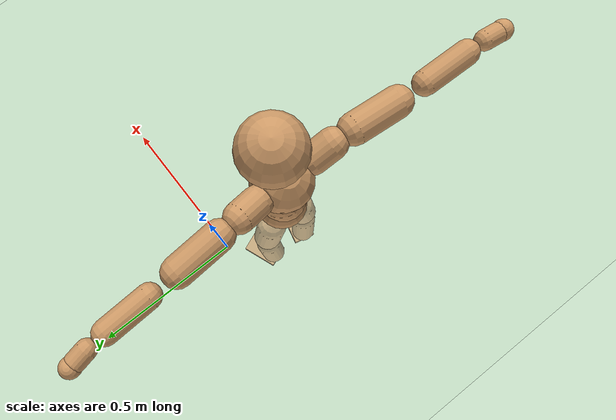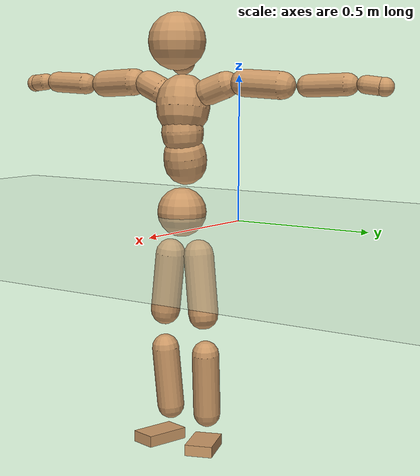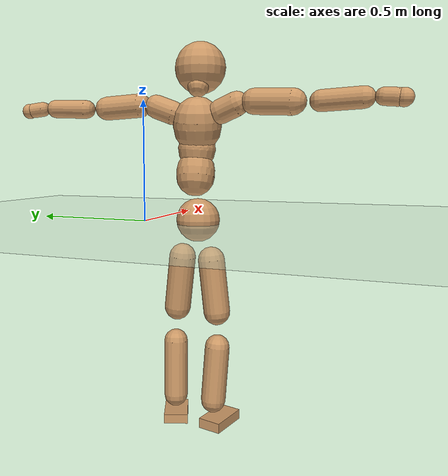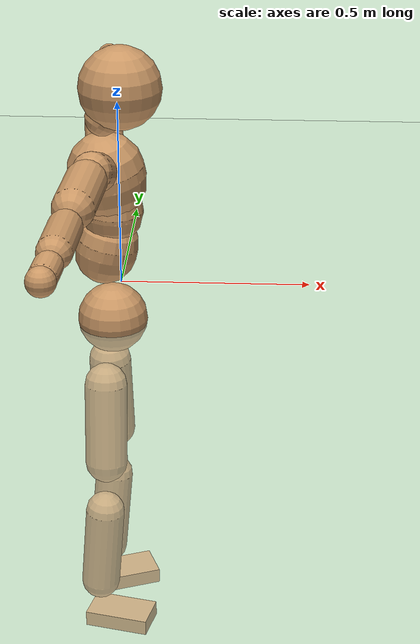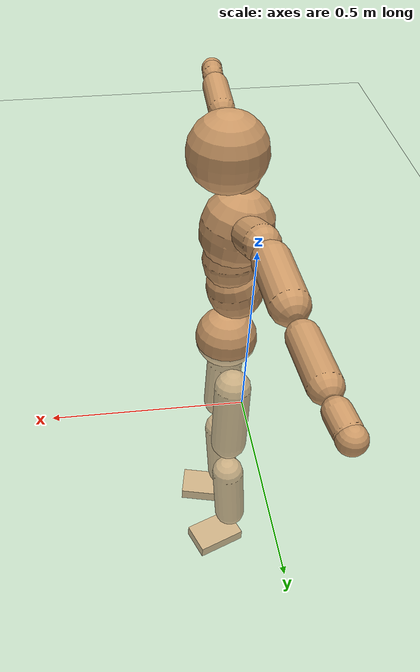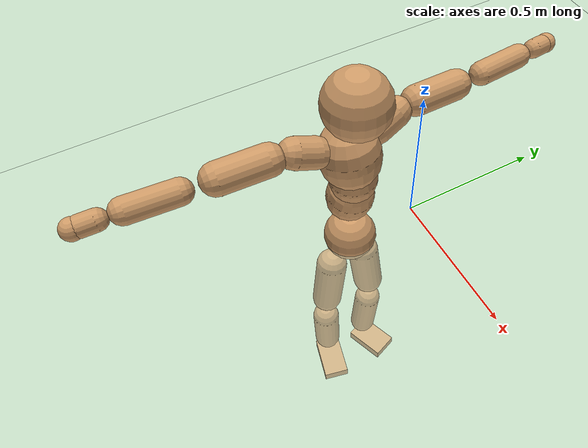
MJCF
<mujoco model="humanoid">
  <compiler coordinate="local" angle="radian"/>
  <default>
    <joint damping="0.0" armature="0.01" stiffness="0.0" limited="true"/>
    <geom conaffinity="1" condim="3" contype="7" margin="0.001" rgba="0.8 0.6 .4 1"/>
  </default>
  <asset>
    <texture type="skybox" builtin="gradient" rgb1=".4 .5 .6" rgb2="0 0 0" width="100" height="100"/>
    <texture builtin="flat" height="1278" mark="cross" markrgb="1 1 1" name="texgeom" random="0.01" rgb1="0.8 0.6 0.4" rgb2="0.8 0.6 0.4" type="cube" width="127"/>
    <texture builtin="checker" height="100" name="texplane" rgb1="0 0 0" rgb2="0.8 0.8 0.8" type="2d" width="100"/>
    <material name="MatPlane" reflectance="0.5" shininess="1" specular="1" texrepeat="60 60" texture="texplane"/>
    <material name="geom" texture="texgeom" texuniform="true"/>
  </asset>
  <worldbody>
    <light cutoff="100" diffuse="1 1 1" dir="-0 0 -1.3" directional="true" exponent="1" pos="0 0 1.3" specular=".1 .1 .1"/>
    <geom conaffinity="1" condim="3" name="floor" pos="0 0 0" rgba="0.8 0.9 0.8 1" size="100 100 .2" type="plane" material="MatPlane"/>
    <body name="Pelvis" pos="0.0011 -0.2422 0.0136">
      <freejoint name="Pelvis"/>
      <geom type="sphere" contype="1" conaffinity="1" density="500" size="0.0884" pos="0.0000 0.0000 0.0000" name="Pelvis"/>
      <body name="L_Hip" pos="-0.0189 0.0537 -0.0794">
        <joint name="L_Hip_x" type="hinge" pos="0 0 0" axis="1 0 0" stiffness="800" damping="80" armature="0.02" range="-180.0000 180.0000"/>
        <joint name="L_Hip_y" type="hinge" pos="0 0 0" axis="0 1 0" stiffness="800" damping="80" armature="0.02" range="-180.0000 180.0000"/>
        <joint name="L_Hip_z" type="hinge" pos="0 0 0" axis="0 0 1" stiffness="800" damping="80" armature="0.02" range="-180.0000 180.0000"/>
        <geom type="capsule" contype="1" conaffinity="1" density="500" fromto="0.0015 0.0081 -0.0722 0.0061 0.0325 -0.2888" size="0.0542" name="L_Hip"/>
        <body name="L_Knee" pos="0.0076 0.0407 -0.361">
          <joint name="L_Knee_x" type="hinge" pos="0 0 0" axis="1 0 0" stiffness="800" damping="80" armature="0.02" range="-180.0000 180.0000"/>
          <joint name="L_Knee_y" type="hinge" pos="0 0 0" axis="0 1 0" stiffness="800" damping="80" armature="0.02" range="-180.0000 180.0000"/>
          <joint name="L_Knee_z" type="hinge" pos="0 0 0" axis="0 0 1" stiffness="800" damping="80" armature="0.02" range="-180.0000 180.0000"/>
          <geom type="capsule" contype="1" conaffinity="1" density="500" fromto="-0.0069 -0.0024 -0.0757 -0.0274 -0.0097 -0.3030" size="0.0494" name="L_Knee"/>
          <body name="L_Ankle" pos="-0.0343 -0.0122 -0.3787">
            <joint name="L_Ankle_x" type="hinge" pos="0 0 0" axis="1 0 0" stiffness="800" damping="80" armature="0.02" range="-180.0000 180.0000"/>
            <joint name="L_Ankle_y" type="hinge" pos="0 0 0" axis="0 1 0" stiffness="800" damping="80" armature="0.02" range="-180.0000 180.0000"/>
            <joint name="L_Ankle_z" type="hinge" pos="0 0 0" axis="0 0 1" stiffness="800" damping="80" armature="0.02" range="-180.0000 180.0000"/>
            <geom type="box" contype="1" conaffinity="1" density="500" pos="0.0557 0.0214 -0.0276" size="0.078 0.0496 0.0199" quat="0.9832 0.0000 0.0000 0.1826" name="L_Ankle"/>
            <body name="L_Toe" pos="0.1114 0.0429 -0.0552">
              <joint name="L_Toe_x" type="hinge" pos="0 0 0" axis="1 0 0" stiffness="500" damping="50" armature="0.02" range="-180.0000 180.0000"/>
              <joint name="L_Toe_y" type="hinge" pos="0 0 0" axis="0 1 0" stiffness="500" damping="50" armature="0.02" range="-180.0000 180.0000"/>
              <joint name="L_Toe_z" type="hinge" pos="0 0 0" axis="0 0 1" stiffness="500" damping="50" armature="0.02" range="-180.0000 180.0000"/>
              <geom type="box" contype="1" conaffinity="1" density="500" pos="0.0000 0.0000 0.0286" size="0.001 0.0023 0.001" quat="0.9823 0.0000 0.0000 0.1873" name="L_Toe"/>
            </body>
          </body>
        </body>
      </body>
      <body name="R_Hip" pos="-0.0158 -0.0558 -0.0875">
        <joint name="R_Hip_x" type="hinge" pos="0 0 0" axis="1 0 0" stiffness="800" damping="80" armature="0.02" range="-180.0000 180.0000"/>
        <joint name="R_Hip_y" type="hinge" pos="0 0 0" axis="0 1 0" stiffness="800" damping="80" armature="0.02" range="-180.0000 180.0000"/>
        <joint name="R_Hip_z" type="hinge" pos="0 0 0" axis="0 0 1" stiffness="800" damping="80" armature="0.02" range="-180.0000 180.0000"/>
        <geom type="capsule" contype="1" conaffinity="1" density="500" fromto="-0.0005 -0.0084 -0.0713 -0.0019 -0.0336 -0.2850" size="0.054" name="R_Hip"/>
        <body name="R_Knee" pos="-0.0024 -0.0421 -0.3563">
          <joint name="R_Knee_x" type="hinge" pos="0 0 0" axis="1 0 0" stiffness="800" damping="80" armature="0.02" range="-180.0000 180.0000"/>
          <joint name="R_Knee_y" type="hinge" pos="0 0 0" axis="0 1 0" stiffness="800" damping="80" armature="0.02" range="-180.0000 180.0000"/>
          <joint name="R_Knee_z" type="hinge" pos="0 0 0" axis="0 0 1" stiffness="800" damping="80" armature="0.02" range="-180.0000 180.0000"/>
          <geom type="capsule" contype="1" conaffinity="1" density="500" fromto="-0.0062 0.0033 -0.0746 -0.0248 0.0133 -0.2984" size="0.0502" name="R_Knee"/>
          <body name="R_Ankle" pos="-0.0309 0.0166 -0.373">
            <joint name="R_Ankle_x" type="hinge" pos="0 0 0" axis="1 0 0" stiffness="800" damping="80" armature="0.02" range="-180.0000 180.0000"/>
            <joint name="R_Ankle_y" type="hinge" pos="0 0 0" axis="0 1 0" stiffness="800" damping="80" armature="0.02" range="-180.0000 180.0000"/>
            <joint name="R_Ankle_z" type="hinge" pos="0 0 0" axis="0 0 1" stiffness="800" damping="80" armature="0.02" range="-180.0000 180.0000"/>
            <geom type="box" contype="1" conaffinity="1" density="500" pos="0.0597 -0.0140 -0.0295" size="0.0837 0.0481 0.0205" quat="0.9934 0.0000 0.0000 -0.1150" name="R_Ankle"/>
            <body name="R_Toe" pos="0.1193 -0.028 -0.0591">
              <joint name="R_Toe_x" type="hinge" pos="0 0 0" axis="1 0 0" stiffness="500" damping="50" armature="0.02" range="-180.0000 180.0000"/>
              <joint name="R_Toe_y" type="hinge" pos="0 0 0" axis="0 1 0" stiffness="500" damping="50" armature="0.02" range="-180.0000 180.0000"/>
              <joint name="R_Toe_z" type="hinge" pos="0 0 0" axis="0 0 1" stiffness="500" damping="50" armature="0.02" range="-180.0000 180.0000"/>
              <geom type="box" contype="1" conaffinity="1" density="500" pos="0.0000 0.0000 0.0316" size="0.001 0.0023 0.0011" quat="0.9944 0.0000 0.0000 -0.1053" name="R_Toe"/>
            </body>
          </body>
        </body>
      </body>
      <body name="Torso" pos="-0.0275 0.0039 0.1196">
        <joint name="Torso_x" type="hinge" pos="0 0 0" axis="1 0 0" stiffness="1000" damping="100" armature="0.02" range="-180.0000 180.0000"/>
        <joint name="Torso_y" type="hinge" pos="0 0 0" axis="0 1 0" stiffness="1000" damping="100" armature="0.02" range="-180.0000 180.0000"/>
        <joint name="Torso_z" type="hinge" pos="0 0 0" axis="0 0 1" stiffness="1000" damping="100" armature="0.02" range="-180.0000 180.0000"/>
        <geom type="capsule" contype="1" conaffinity="1" density="500" fromto="0.0192 0.0030 0.0835 0.0128 0.0020 0.0556" size="0.077" name="Torso"/>
        <body name="Spine" pos="0.032 0.0049 0.1391">
          <joint name="Spine_x" type="hinge" pos="0 0 0" axis="1 0 0" stiffness="1000" damping="100" armature="0.02" range="-180.0000 180.0000"/>
          <joint name="Spine_y" type="hinge" pos="0 0 0" axis="0 1 0" stiffness="1000" damping="100" armature="0.02" range="-180.0000 180.0000"/>
          <joint name="Spine_z" type="hinge" pos="0 0 0" axis="0 0 1" stiffness="1000" damping="100" armature="0.02" range="-180.0000 180.0000"/>
          <geom type="capsule" contype="1" conaffinity="1" density="500" fromto="0.0014 -0.0016 0.0331 0.0010 -0.0011 0.0221" size="0.0755" name="Spine"/>
          <body name="Chest" pos="0.0024 -0.0027 0.0552">
            <joint name="Chest_x" type="hinge" pos="0 0 0" axis="1 0 0" stiffness="1000" damping="100" armature="0.02" range="-180.0000 180.0000"/>
            <joint name="Chest_y" type="hinge" pos="0 0 0" axis="0 1 0" stiffness="1000" damping="100" armature="0.02" range="-180.0000 180.0000"/>
            <joint name="Chest_z" type="hinge" pos="0 0 0" axis="0 0 1" stiffness="1000" damping="100" armature="0.02" range="-180.0000 180.0000"/>
            <geom type="capsule" contype="1" conaffinity="1" density="500" fromto="-0.0151 -0.0054 0.0820 -0.0100 -0.0036 0.0547" size="0.0959" name="Chest"/>
            <body name="Neck" pos="-0.0298 -0.0124 0.1986">
              <joint name="Neck_x" type="hinge" pos="0 0 0" axis="1 0 0" stiffness="500" damping="50" armature="0.02" range="-180.0000 180.0000"/>
              <joint name="Neck_y" type="hinge" pos="0 0 0" axis="0 1 0" stiffness="500" damping="50" armature="0.02" range="-180.0000 180.0000"/>
              <joint name="Neck_z" type="hinge" pos="0 0 0" axis="0 0 1" stiffness="500" damping="50" armature="0.02" range="-180.0000 180.0000"/>
              <geom type="capsule" contype="1" conaffinity="1" density="500" fromto="0.0108 0.0018 0.0185 0.0432 0.0073 0.0740" size="0.0434" name="Neck"/>
              <body name="Head" pos="0.0539 0.0091 0.0925">
                <joint name="Head_x" type="hinge" pos="0 0 0" axis="1 0 0" stiffness="500" damping="50" armature="0.02" range="-180.0000 180.0000"/>
                <joint name="Head_y" type="hinge" pos="0 0 0" axis="0 1 0" stiffness="500" damping="50" armature="0.02" range="-180.0000 180.0000"/>
                <joint name="Head_z" type="hinge" pos="0 0 0" axis="0 0 1" stiffness="500" damping="50" armature="0.02" range="-180.0000 180.0000"/>
                <geom type="sphere" contype="1" conaffinity="1" density="500" size="0.1018" pos="0.0000 0.0000 0.0000" name="Head"/>
              </body>
            </body>
            <body name="L_Thorax" pos="-0.0219 0.0687 0.1055">
              <joint name="L_Thorax_x" type="hinge" pos="0 0 0" axis="1 0 0" stiffness="500" damping="50" armature="0.02" range="-180.0000 180.0000"/>
              <joint name="L_Thorax_y" type="hinge" pos="0 0 0" axis="0 1 0" stiffness="500" damping="50" armature="0.02" range="-180.0000 180.0000"/>
              <joint name="L_Thorax_z" type="hinge" pos="0 0 0" axis="0 0 1" stiffness="500" damping="50" armature="0.02" range="-180.0000 180.0000"/>
              <geom type="capsule" contype="1" conaffinity="1" density="500" fromto="-0.0036 0.0232 0.0088 -0.0142 0.0928 0.0352" size="0.0474" name="L_Thorax"/>
              <body name="L_Shoulder" pos="-0.0178 0.116 0.044">
                <joint name="L_Shoulder_x" type="hinge" pos="0 0 0" axis="1 0 0" stiffness="500" damping="50" armature="0.02" range="-720.0000 720.0000"/>
                <joint name="L_Shoulder_y" type="hinge" pos="0 0 0" axis="0 1 0" stiffness="500" damping="50" armature="0.02" range="-720.0000 720.0000"/>
                <joint name="L_Shoulder_z" type="hinge" pos="0 0 0" axis="0 0 1" stiffness="500" damping="50" armature="0.02" range="-720.0000 720.0000"/>
                <geom type="capsule" contype="1" conaffinity="1" density="500" fromto="-0.0027 0.0491 -0.0026 -0.0110 0.1963 -0.0103" size="0.0476" name="L_Shoulder"/>
                <body name="L_Elbow" pos="-0.0137 0.2454 -0.0128">
                  <joint name="L_Elbow_x" type="hinge" pos="0 0 0" axis="1 0 0" stiffness="500" damping="50" armature="0.02" range="-720.0000 720.0000"/>
                  <joint name="L_Elbow_y" type="hinge" pos="0 0 0" axis="0 1 0" stiffness="500" damping="50" armature="0.02" range="-720.0000 720.0000"/>
                  <joint name="L_Elbow_z" type="hinge" pos="0 0 0" axis="0 0 1" stiffness="500" damping="50" armature="0.02" range="-720.0000 720.0000"/>
                  <geom type="capsule" contype="1" conaffinity="1" density="500" fromto="-0.0023 0.0480 0.0018 -0.0093 0.1920 0.0072" size="0.0378" name="L_Elbow"/>
                  <body name="L_Wrist" pos="-0.0116 0.24 0.009">
                    <joint name="L_Wrist_x" type="hinge" pos="0 0 0" axis="1 0 0" stiffness="300" damping="30" armature="0.02" range="-180.0000 180.0000"/>
                    <joint name="L_Wrist_y" type="hinge" pos="0 0 0" axis="0 1 0" stiffness="300" damping="30" armature="0.02" range="-180.0000 180.0000"/>
                    <joint name="L_Wrist_z" type="hinge" pos="0 0 0" axis="0 0 1" stiffness="300" damping="30" armature="0.02" range="-180.0000 180.0000"/>
                    <geom type="capsule" contype="1" conaffinity="1" density="500" fromto="-0.0027 0.0152 -0.0018 -0.0109 0.0610 -0.0073" size="0.0303" name="L_Wrist"/>
                    <body name="L_Hand" pos="-0.0136 0.0762 -0.0092">
                      <joint name="L_Hand_x" type="hinge" pos="0 0 0" axis="1 0 0" stiffness="300" damping="30" armature="0.02" range="-180.0000 180.0000"/>
                      <joint name="L_Hand_y" type="hinge" pos="0 0 0" axis="0 1 0" stiffness="300" damping="30" armature="0.02" range="-180.0000 180.0000"/>
                      <joint name="L_Hand_z" type="hinge" pos="0 0 0" axis="0 0 1" stiffness="300" damping="30" armature="0.02" range="-180.0000 180.0000"/>
                      <geom type="sphere" contype="1" conaffinity="1" density="500" size="0.0315" pos="0.0000 0.0000 0.0000" name="L_Hand"/>
                    </body>
                  </body>
                </body>
              </body>
            </body>
            <body name="R_Thorax" pos="-0.0236 -0.0835 0.1059">
              <joint name="R_Thorax_x" type="hinge" pos="0 0 0" axis="1 0 0" stiffness="500" damping="50" armature="0.02" range="-180.0000 180.0000"/>
              <joint name="R_Thorax_y" type="hinge" pos="0 0 0" axis="0 1 0" stiffness="500" damping="50" armature="0.02" range="-180.0000 180.0000"/>
              <joint name="R_Thorax_z" type="hinge" pos="0 0 0" axis="0 0 1" stiffness="500" damping="50" armature="0.02" range="-180.0000 180.0000"/>
              <geom type="capsule" contype="1" conaffinity="1" density="500" fromto="-0.0015 -0.0220 0.0089 -0.0058 -0.0878 0.0358" size="0.0484" name="R_Thorax"/>
              <body name="R_Shoulder" pos="-0.0073 -0.1098 0.0447">
                <joint name="R_Shoulder_x" type="hinge" pos="0 0 0" axis="1 0 0" stiffness="500" damping="50" armature="0.02" range="-720.0000 720.0000"/>
                <joint name="R_Shoulder_y" type="hinge" pos="0 0 0" axis="0 1 0" stiffness="500" damping="50" armature="0.02" range="-720.0000 720.0000"/>
                <joint name="R_Shoulder_z" type="hinge" pos="0 0 0" axis="0 0 1" stiffness="500" damping="50" armature="0.02" range="-720.0000 720.0000"/>
                <geom type="capsule" contype="1" conaffinity="1" density="500" fromto="-0.0040 -0.0499 -0.0025 -0.0161 -0.1995 -0.0098" size="0.0496" name="R_Shoulder"/>
                <body name="R_Elbow" pos="-0.0201 -0.2494 -0.0123">
                  <joint name="R_Elbow_x" type="hinge" pos="0 0 0" axis="1 0 0" stiffness="500" damping="50" armature="0.02" range="-720.0000 720.0000"/>
                  <joint name="R_Elbow_y" type="hinge" pos="0 0 0" axis="0 1 0" stiffness="500" damping="50" armature="0.02" range="-720.0000 720.0000"/>
                  <joint name="R_Elbow_z" type="hinge" pos="0 0 0" axis="0 0 1" stiffness="500" damping="50" armature="0.02" range="-720.0000 720.0000"/>
                  <geom type="capsule" contype="1" conaffinity="1" density="500" fromto="-0.0015 -0.0502 0.0020 -0.0061 -0.2008 0.0079" size="0.0395" name="R_Elbow"/>
                  <body name="R_Wrist" pos="-0.0077 -0.251 0.0099">
                    <joint name="R_Wrist_x" type="hinge" pos="0 0 0" axis="1 0 0" stiffness="300" damping="30" armature="0.02" range="-180.0000 180.0000"/>
                    <joint name="R_Wrist_y" type="hinge" pos="0 0 0" axis="0 1 0" stiffness="300" damping="30" armature="0.02" range="-180.0000 180.0000"/>
                    <joint name="R_Wrist_z" type="hinge" pos="0 0 0" axis="0 0 1" stiffness="300" damping="30" armature="0.02" range="-180.0000 180.0000"/>
                    <geom type="capsule" contype="1" conaffinity="1" density="500" fromto="-0.0018 -0.0162 -0.0015 -0.0073 -0.0647 -0.0061" size="0.032" name="R_Wrist"/>
                    <body name="R_Hand" pos="-0.0091 -0.0809 -0.0076">
                      <joint name="R_Hand_x" type="hinge" pos="0 0 0" axis="1 0 0" stiffness="300" damping="30" armature="0.02" range="-180.0000 180.0000"/>
                      <joint name="R_Hand_y" type="hinge" pos="0 0 0" axis="0 1 0" stiffness="300" damping="30" armature="0.02" range="-180.0000 180.0000"/>
                      <joint name="R_Hand_z" type="hinge" pos="0 0 0" axis="0 0 1" stiffness="300" damping="30" armature="0.02" range="-180.0000 180.0000"/>
                      <geom type="sphere" contype="1" conaffinity="1" density="500" size="0.0330" pos="0.0000 0.0000 0.0000" name="R_Hand"/>
                    </body>
                  </body>
                </body>
              </body>
            </body>
          </body>
        </body>
      </body>
    </body>
  </worldbody>
  <actuator>
    <motor name="L_Hip_x" joint="L_Hip_x" gear="500"/>
    <motor name="L_Hip_y" joint="L_Hip_y" gear="500"/>
    <motor name="L_Hip_z" joint="L_Hip_z" gear="500"/>
    <motor name="L_Knee_x" joint="L_Knee_x" gear="500"/>
    <motor name="L_Knee_y" joint="L_Knee_y" gear="500"/>
    <motor name="L_Knee_z" joint="L_Knee_z" gear="500"/>
    <motor name="L_Ankle_x" joint="L_Ankle_x" gear="500"/>
    <motor name="L_Ankle_y" joint="L_Ankle_y" gear="500"/>
    <motor name="L_Ankle_z" joint="L_Ankle_z" gear="500"/>
    <motor name="L_Toe_x" joint="L_Toe_x" gear="500"/>
    <motor name="L_Toe_y" joint="L_Toe_y" gear="500"/>
    <motor name="L_Toe_z" joint="L_Toe_z" gear="500"/>
    <motor name="R_Hip_x" joint="R_Hip_x" gear="500"/>
    <motor name="R_Hip_y" joint="R_Hip_y" gear="500"/>
    <motor name="R_Hip_z" joint="R_Hip_z" gear="500"/>
    <motor name="R_Knee_x" joint="R_Knee_x" gear="500"/>
    <motor name="R_Knee_y" joint="R_Knee_y" gear="500"/>
    <motor name="R_Knee_z" joint="R_Knee_z" gear="500"/>
    <motor name="R_Ankle_x" joint="R_Ankle_x" gear="500"/>
    <motor name="R_Ankle_y" joint="R_Ankle_y" gear="500"/>
    <motor name="R_Ankle_z" joint="R_Ankle_z" gear="500"/>
    <motor name="R_Toe_x" joint="R_Toe_x" gear="500"/>
    <motor name="R_Toe_y" joint="R_Toe_y" gear="500"/>
    <motor name="R_Toe_z" joint="R_Toe_z" gear="500"/>
    <motor name="Torso_x" joint="Torso_x" gear="500"/>
    <motor name="Torso_y" joint="Torso_y" gear="500"/>
    <motor name="Torso_z" joint="Torso_z" gear="500"/>
    <motor name="Spine_x" joint="Spine_x" gear="500"/>
    <motor name="Spine_y" joint="Spine_y" gear="500"/>
    <motor name="Spine_z" joint="Spine_z" gear="500"/>
    <motor name="Chest_x" joint="Chest_x" gear="500"/>
    <motor name="Chest_y" joint="Chest_y" gear="500"/>
    <motor name="Chest_z" joint="Chest_z" gear="500"/>
    <motor name="Neck_x" joint="Neck_x" gear="500"/>
    <motor name="Neck_y" joint="Neck_y" gear="500"/>
    <motor name="Neck_z" joint="Neck_z" gear="500"/>
    <motor name="Head_x" joint="Head_x" gear="500"/>
    <motor name="Head_y" joint="Head_y" gear="500"/>
    <motor name="Head_z" joint="Head_z" gear="500"/>
    <motor name="L_Thorax_x" joint="L_Thorax_x" gear="500"/>
    <motor name="L_Thorax_y" joint="L_Thorax_y" gear="500"/>
    <motor name="L_Thorax_z" joint="L_Thorax_z" gear="500"/>
    <motor name="L_Shoulder_x" joint="L_Shoulder_x" gear="500"/>
    <motor name="L_Shoulder_y" joint="L_Shoulder_y" gear="500"/>
    <motor name="L_Shoulder_z" joint="L_Shoulder_z" gear="500"/>
    <motor name="L_Elbow_x" joint="L_Elbow_x" gear="500"/>
    <motor name="L_Elbow_y" joint="L_Elbow_y" gear="500"/>
    <motor name="L_Elbow_z" joint="L_Elbow_z" gear="500"/>
    <motor name="L_Wrist_x" joint="L_Wrist_x" gear="500"/>
    <motor name="L_Wrist_y" joint="L_Wrist_y" gear="500"/>
    <motor name="L_Wrist_z" joint="L_Wrist_z" gear="500"/>
    <motor name="L_Hand_x" joint="L_Hand_x" gear="500"/>
    <motor name="L_Hand_y" joint="L_Hand_y" gear="500"/>
    <motor name="L_Hand_z" joint="L_Hand_z" gear="500"/>
    <motor name="R_Thorax_x" joint="R_Thorax_x" gear="500"/>
    <motor name="R_Thorax_y" joint="R_Thorax_y" gear="500"/>
    <motor name="R_Thorax_z" joint="R_Thorax_z" gear="500"/>
    <motor name="R_Shoulder_x" joint="R_Shoulder_x" gear="500"/>
    <motor name="R_Shoulder_y" joint="R_Shoulder_y" gear="500"/>
    <motor name="R_Shoulder_z" joint="R_Shoulder_z" gear="500"/>
    <motor name="R_Elbow_x" joint="R_Elbow_x" gear="500"/>
    <motor name="R_Elbow_y" joint="R_Elbow_y" gear="500"/>
    <motor name="R_Elbow_z" joint="R_Elbow_z" gear="500"/>
    <motor name="R_Wrist_x" joint="R_Wrist_x" gear="500"/>
    <motor name="R_Wrist_y" joint="R_Wrist_y" gear="500"/>
    <motor name="R_Wrist_z" joint="R_Wrist_z" gear="500"/>
    <motor name="R_Hand_x" joint="R_Hand_x" gear="500"/>
    <motor name="R_Hand_y" joint="R_Hand_y" gear="500"/>
    <motor name="R_Hand_z" joint="R_Hand_z" gear="500"/>
  </actuator>
  <contact>
    <exclude body1="Torso" body2="Chest"/>
    <exclude body1="Head" body2="Chest"/>
    <exclude body1="R_Knee" body2="R_Toe"/>
    <exclude body1="R_Knee" body2="L_Ankle"/>
    <exclude body1="R_Knee" body2="L_Toe"/>
    <exclude body1="L_Knee" body2="L_Toe"/>
    <exclude body1="L_Knee" body2="R_Ankle"/>
    <exclude body1="L_Knee" body2="R_Toe"/>
    <exclude body1="L_Shoulder" body2="Chest"/>
    <exclude body1="R_Shoulder" body2="Chest"/>
  </contact>
  <sensor/>
  <size njmax="700" nconmax="700"/>
</mujoco>
